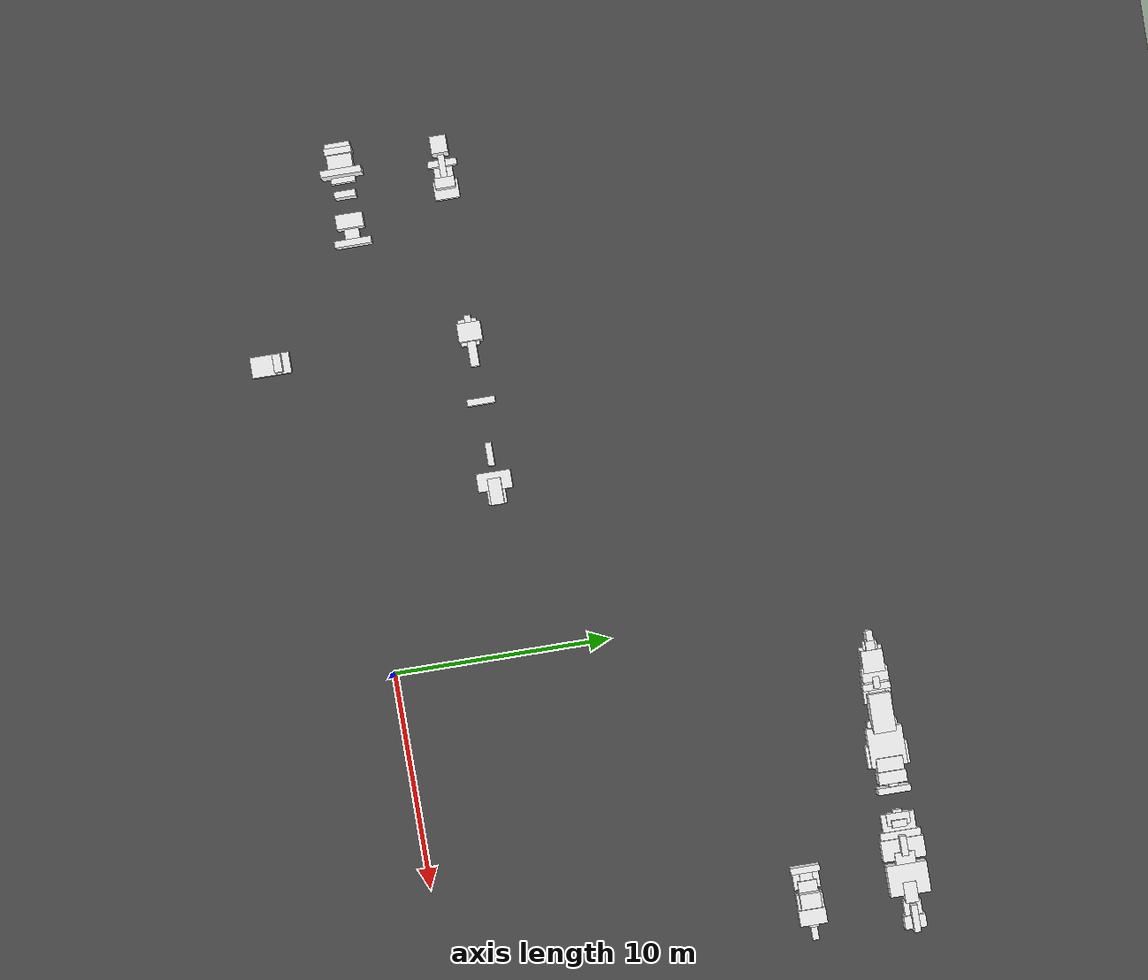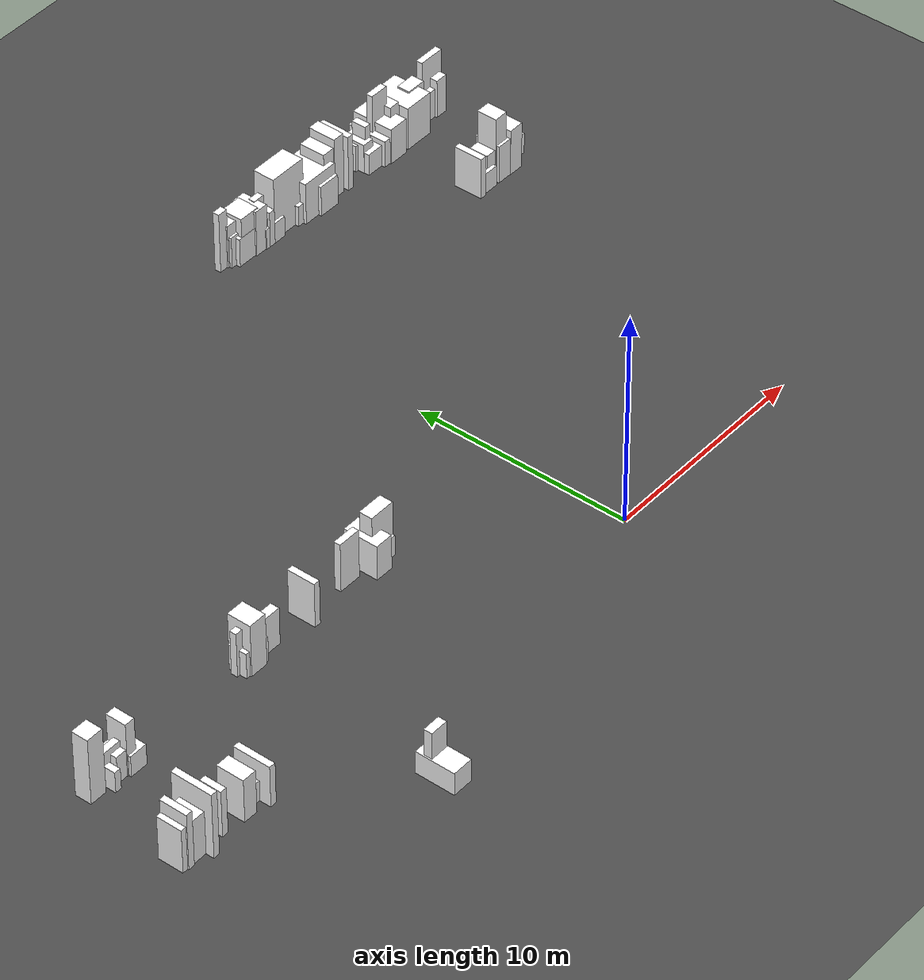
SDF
<sdf version="1.6">
 <world name="mirror_edge_world">
  <model name="ground_plane">
   <static>true</static>
   <link name="link">
    <collision name="collision">
     <geometry><plane><normal>0 0 1</normal><size>100 100</size></plane></geometry>
    </collision>
    <visual name="visual">
     <geometry><plane><normal>0 0 1</normal><size>100 100</size></plane></geometry>
     <material>
      <ambient>0.3 0.3 0.3 1</ambient>
      <diffuse>0.3 0.3 0.3 1</diffuse>
      <specular>0.5 0.5 0.5 1</specular>
      <emissive>0 0 0 1</emissive>
     </material>
    </visual>
   </link>
  </model>
  <model name="roadside_block_6_46_0">
   <static>true</static>
   <link name="link">
    <pose>-14.93615656534098 6.266449563783681 1.0100591892157889 0 0 0</pose>
    <collision name="collision">
     <geometry><box><size>0.31554994346074183 0.3 2.0201183784315777</size></box></geometry>
    </collision>
    <visual name="visual">
     <geometry><box><size>0.31554994346074183 0.3 2.0201183784315777</size></box></geometry>
     <material>
      <ambient>1 1 1 1</ambient>
      <diffuse>1 1 1 1</diffuse>
      <specular>0.9 0.9 0.9 1</specular>
      <emissive>0.05 0.05 0.05 1</emissive>
     </material>
    </visual>
   </link>
  </model>
  <model name="roadside_block_6_47_0">
   <static>true</static>
   <link name="link">
    <pose>-14.93615656534098 5.89767672821376 0.6121225274462325 0 0 0</pose>
    <collision name="collision">
     <geometry><box><size>1.2217612364891097 0.8529486010346122 1.224245054892465</size></box></geometry>
    </collision>
    <visual name="visual">
     <geometry><box><size>1.2217612364891097 0.8529486010346122 1.224245054892465</size></box></geometry>
     <material>
      <ambient>1 1 1 1</ambient>
      <diffuse>1 1 1 1</diffuse>
      <specular>0.9 0.9 0.9 1</specular>
      <emissive>0.05 0.05 0.05 1</emissive>
     </material>
    </visual>
   </link>
  </model>
  <model name="roadside_block_6_71_0">
   <static>true</static>
   <link name="link">
    <pose>-14.93615656534098 -2.9528713254643186 1.179741254271644 0 0 0</pose>
    <collision name="collision">
     <geometry><box><size>0.8335240802613174 0.3787711720536775 2.359482508543288</size></box></geometry>
    </collision>
    <visual name="visual">
     <geometry><box><size>0.8335240802613174 0.3787711720536775 2.359482508543288</size></box></geometry>
     <material>
      <ambient>1 1 1 1</ambient>
      <diffuse>1 1 1 1</diffuse>
      <specular>0.9 0.9 0.9 1</specular>
      <emissive>0.05 0.05 0.05 1</emissive>
     </material>
    </visual>
   </link>
  </model>
  <model name="roadside_block_6_72_0">
   <static>true</static>
   <link name="link">
    <pose>-14.93615656534098 -3.3216441610342393 0.5419287668428681 0 0 0</pose>
    <collision name="collision">
     <geometry><box><size>0.9598941086352828 1.81155084738607 1.0838575336857361</size></box></geometry>
    </collision>
    <visual name="visual">
     <geometry><box><size>0.9598941086352828 1.81155084738607 1.0838575336857361</size></box></geometry>
     <material>
      <ambient>1 1 1 1</ambient>
      <diffuse>1 1 1 1</diffuse>
      <specular>0.9 0.9 0.9 1</specular>
      <emissive>0.05 0.05 0.05 1</emissive>
     </material>
    </visual>
   </link>
  </model>
  <model name="roadside_block_7_0_0">
   <static>true</static>
   <link name="link">
    <pose>-24.046 1.3519780923328248 1.3582740129514355 0 0 0</pose>
    <collision name="collision">
     <geometry><box><size>0.3 1.2595613373748178 2.716548025902871</size></box></geometry>
    </collision>
    <visual name="visual">
     <geometry><box><size>0.3 1.2595613373748178 2.716548025902871</size></box></geometry>
     <material>
      <ambient>1 1 1 1</ambient>
      <diffuse>1 1 1 1</diffuse>
      <specular>0.9 0.9 0.9 1</specular>
      <emissive>0.05 0.05 0.05 1</emissive>
     </material>
    </visual>
   </link>
  </model>
  <model name="roadside_block_7_1_0">
   <static>true</static>
   <link name="link">
    <pose>-23.799454336963624 1.3519780923328248 1.0560110684610167 0 0 0</pose>
    <collision name="collision">
     <geometry><box><size>1.2916657985876765 1.155817656670508 2.1120221369220333</size></box></geometry>
    </collision>
    <visual name="visual">
     <geometry><box><size>1.2916657985876765 1.155817656670508 2.1120221369220333</size></box></geometry>
     <material>
      <ambient>1 1 1 1</ambient>
      <diffuse>1 1 1 1</diffuse>
      <specular>0.9 0.9 0.9 1</specular>
      <emissive>0.05 0.05 0.05 1</emissive>
     </material>
    </visual>
   </link>
  </model>
  <model name="roadside_block_7_2_0">
   <static>true</static>
   <link name="link">
    <pose>-23.552908673927245 5.9519780923328245 1.5887316539882477 0 0 0</pose>
    <collision name="collision">
     <geometry><box><size>0.7944411288685921 0.7592227984116298 3.1774633079764953</size></box></geometry>
    </collision>
    <visual name="visual">
     <geometry><box><size>0.7944411288685921 0.7592227984116298 3.1774633079764953</size></box></geometry>
     <material>
      <ambient>1 1 1 1</ambient>
      <diffuse>1 1 1 1</diffuse>
      <specular>0.9 0.9 0.9 1</specular>
      <emissive>0.05 0.05 0.05 1</emissive>
     </material>
    </visual>
   </link>
  </model>
  <model name="roadside_block_7_3_0">
   <static>true</static>
   <link name="link">
    <pose>-23.30636301089087 1.3519780923328248 0.5324072673740756 0 0 0</pose>
    <collision name="collision">
     <geometry><box><size>1.3104954003255975 1.111551612531347 1.0648145347481512</size></box></geometry>
    </collision>
    <visual name="visual">
     <geometry><box><size>1.3104954003255975 1.111551612531347 1.0648145347481512</size></box></geometry>
     <material>
      <ambient>1 1 1 1</ambient>
      <diffuse>1 1 1 1</diffuse>
      <specular>0.9 0.9 0.9 1</specular>
      <emissive>0.05 0.05 0.05 1</emissive>
     </material>
    </visual>
   </link>
  </model>
  <model name="roadside_block_7_4_0">
   <static>true</static>
   <link name="link">
    <pose>-23.05981734785449 1.3519780923328248 1.5694196138666845 0 0 0</pose>
    <collision name="collision">
     <geometry><box><size>0.3 1.8902110944549166 3.138839227733369</size></box></geometry>
    </collision>
    <visual name="visual">
     <geometry><box><size>0.3 1.8902110944549166 3.138839227733369</size></box></geometry>
     <material>
      <ambient>1 1 1 1</ambient>
      <diffuse>1 1 1 1</diffuse>
      <specular>0.9 0.9 0.9 1</specular>
      <emissive>0.05 0.05 0.05 1</emissive>
     </material>
    </visual>
   </link>
  </model>
  <model name="roadside_block_7_5_0">
   <static>true</static>
   <link name="link">
    <pose>-22.813271684818115 5.9519780923328245 0.5 0 0 0</pose>
    <collision name="collision">
     <geometry><box><size>0.3 1.3481017867229659 1.0</size></box></geometry>
    </collision>
    <visual name="visual">
     <geometry><box><size>0.3 1.3481017867229659 1.0</size></box></geometry>
     <material>
      <ambient>1 1 1 1</ambient>
      <diffuse>1 1 1 1</diffuse>
      <specular>0.9 0.9 0.9 1</specular>
      <emissive>0.05 0.05 0.05 1</emissive>
     </material>
    </visual>
   </link>
  </model>
  <model name="roadside_block_7_6_0">
   <static>true</static>
   <link name="link">
    <pose>-22.566726021781736 5.9519780923328245 0.8018681513796888 0 0 0</pose>
    <collision name="collision">
     <geometry><box><size>1.1880335720654698 0.3 1.6037363027593776</size></box></geometry>
    </collision>
    <visual name="visual">
     <geometry><box><size>1.1880335720654698 0.3 1.6037363027593776</size></box></geometry>
     <material>
      <ambient>1 1 1 1</ambient>
      <diffuse>1 1 1 1</diffuse>
      <specular>0.9 0.9 0.9 1</specular>
      <emissive>0.05 0.05 0.05 1</emissive>
     </material>
    </visual>
   </link>
  </model>
  <model name="roadside_block_7_7_0">
   <static>true</static>
   <link name="link">
    <pose>-22.32018035874536 5.9519780923328245 0.6579870385556903 0 0 0</pose>
    <collision name="collision">
     <geometry><box><size>0.5332218851711845 0.8588083129895712 1.3159740771113806</size></box></geometry>
    </collision>
    <visual name="visual">
     <geometry><box><size>0.5332218851711845 0.8588083129895712 1.3159740771113806</size></box></geometry>
     <material>
      <ambient>1 1 1 1</ambient>
      <diffuse>1 1 1 1</diffuse>
      <specular>0.9 0.9 0.9 1</specular>
      <emissive>0.05 0.05 0.05 1</emissive>
     </material>
    </visual>
   </link>
  </model>
  <model name="roadside_block_7_8_0">
   <static>true</static>
   <link name="link">
    <pose>-22.073634695708982 1.3519780923328248 1.1203859492186639 0 0 0</pose>
    <collision name="collision">
     <geometry><box><size>0.3 0.983570430619145 2.2407718984373277</size></box></geometry>
    </collision>
    <visual name="visual">
     <geometry><box><size>0.3 0.983570430619145 2.2407718984373277</size></box></geometry>
     <material>
      <ambient>1 1 1 1</ambient>
      <diffuse>1 1 1 1</diffuse>
      <specular>0.9 0.9 0.9 1</specular>
      <emissive>0.05 0.05 0.05 1</emissive>
     </material>
    </visual>
   </link>
  </model>
  <model name="roadside_block_7_9_0">
   <static>true</static>
   <link name="link">
    <pose>-21.827089032672607 5.9519780923328245 1.282801464331791 0 0 0</pose>
    <collision name="collision">
     <geometry><box><size>0.4765580835857851 0.9224353954900508 2.565602928663582</size></box></geometry>
    </collision>
    <visual name="visual">
     <geometry><box><size>0.4765580835857851 0.9224353954900508 2.565602928663582</size></box></geometry>
     <material>
      <ambient>1 1 1 1</ambient>
      <diffuse>1 1 1 1</diffuse>
      <specular>0.9 0.9 0.9 1</specular>
      <emissive>0.05 0.05 0.05 1</emissive>
     </material>
    </visual>
   </link>
  </model>
  <model name="roadside_block_7_10_0">
   <static>true</static>
   <link name="link">
    <pose>-21.580543369636228 5.9519780923328245 0.5 0 0 0</pose>
    <collision name="collision">
     <geometry><box><size>0.845879549343544 1.143358824650945 1.0</size></box></geometry>
    </collision>
    <visual name="visual">
     <geometry><box><size>0.845879549343544 1.143358824650945 1.0</size></box></geometry>
     <material>
      <ambient>1 1 1 1</ambient>
      <diffuse>1 1 1 1</diffuse>
      <specular>0.9 0.9 0.9 1</specular>
      <emissive>0.05 0.05 0.05 1</emissive>
     </material>
    </visual>
   </link>
  </model>
  <model name="roadside_block_7_13_0">
   <static>true</static>
   <link name="link">
    <pose>-20.840906380527098 1.3519780923328248 1.0396856816623183 0 0 0</pose>
    <collision name="collision">
     <geometry><box><size>0.663122516567571 1.25349890532949 2.0793713633246367</size></box></geometry>
    </collision>
    <visual name="visual">
     <geometry><box><size>0.663122516567571 1.25349890532949 2.0793713633246367</size></box></geometry>
     <material>
      <ambient>1 1 1 1</ambient>
      <diffuse>1 1 1 1</diffuse>
      <specular>0.9 0.9 0.9 1</specular>
      <emissive>0.05 0.05 0.05 1</emissive>
     </material>
    </visual>
   </link>
  </model>
  <model name="roadside_block_7_15_0">
   <static>true</static>
   <link name="link">
    <pose>-20.347815054454344 1.3519780923328248 0.5 0 0 0</pose>
    <collision name="collision">
     <geometry><box><size>0.853784522570253 0.6746068936726302 1.0</size></box></geometry>
    </collision>
    <visual name="visual">
     <geometry><box><size>0.853784522570253 0.6746068936726302 1.0</size></box></geometry>
     <material>
      <ambient>1 1 1 1</ambient>
      <diffuse>1 1 1 1</diffuse>
      <specular>0.9 0.9 0.9 1</specular>
      <emissive>0.05 0.05 0.05 1</emissive>
     </material>
    </visual>
   </link>
  </model>
  <model name="roadside_block_7_17_0">
   <static>true</static>
   <link name="link">
    <pose>-19.85472372838159 1.3519780923328248 0.9928755418449663 0 0 0</pose>
    <collision name="collision">
     <geometry><box><size>0.3 1.69654757842538 1.9857510836899326</size></box></geometry>
    </collision>
    <visual name="visual">
     <geometry><box><size>0.3 1.69654757842538 1.9857510836899326</size></box></geometry>
     <material>
      <ambient>1 1 1 1</ambient>
      <diffuse>1 1 1 1</diffuse>
      <specular>0.9 0.9 0.9 1</specular>
      <emissive>0.05 0.05 0.05 1</emissive>
     </material>
    </visual>
   </link>
  </model>
  <model name="roadside_block_7_35_0">
   <static>true</static>
   <link name="link">
    <pose>-15.416901793726803 5.9519780923328245 1.0688234254331048 0 0 0</pose>
    <collision name="collision">
     <geometry><box><size>0.5539774787841407 0.3 2.1376468508662096</size></box></geometry>
    </collision>
    <visual name="visual">
     <geometry><box><size>0.5539774787841407 0.3 2.1376468508662096</size></box></geometry>
     <material>
      <ambient>1 1 1 1</ambient>
      <diffuse>1 1 1 1</diffuse>
      <specular>0.9 0.9 0.9 1</specular>
      <emissive>0.05 0.05 0.05 1</emissive>
     </material>
    </visual>
   </link>
  </model>
  <model name="roadside_block_7_37_0">
   <static>true</static>
   <link name="link">
    <pose>-14.923810467654048 5.9519780923328245 1.2650366720433748 0 0 0</pose>
    <collision name="collision">
     <geometry><box><size>0.8551439535448286 1.0911517065648086 2.5300733440867496</size></box></geometry>
    </collision>
    <visual name="visual">
     <geometry><box><size>0.8551439535448286 1.0911517065648086 2.5300733440867496</size></box></geometry>
     <material>
      <ambient>1 1 1 1</ambient>
      <diffuse>1 1 1 1</diffuse>
      <specular>0.9 0.9 0.9 1</specular>
      <emissive>0.05 0.05 0.05 1</emissive>
     </material>
    </visual>
   </link>
  </model>
  <model name="roadside_block_7_41_0">
   <static>true</static>
   <link name="link">
    <pose>-13.937627815508542 5.9519780923328245 0.8967241940560736 0 0 0</pose>
    <collision name="collision">
     <geometry><box><size>1.1880258806974842 0.40316497235744453 1.7934483881121472</size></box></geometry>
    </collision>
    <visual name="visual">
     <geometry><box><size>1.1880258806974842 0.40316497235744453 1.7934483881121472</size></box></geometry>
     <material>
      <ambient>1 1 1 1</ambient>
      <diffuse>1 1 1 1</diffuse>
      <specular>0.9 0.9 0.9 1</specular>
      <emissive>0.05 0.05 0.05 1</emissive>
     </material>
    </visual>
   </link>
  </model>
  <model name="roadside_block_7_50_0">
   <static>true</static>
   <link name="link">
    <pose>-11.718716848181147 5.9519780923328245 1.0774131021778646 0 0 0</pose>
    <collision name="collision">
     <geometry><box><size>0.3 1.2937941722157142 2.154826204355729</size></box></geometry>
    </collision>
    <visual name="visual">
     <geometry><box><size>0.3 1.2937941722157142 2.154826204355729</size></box></geometry>
     <material>
      <ambient>1 1 1 1</ambient>
      <diffuse>1 1 1 1</diffuse>
      <specular>0.9 0.9 0.9 1</specular>
      <emissive>0.05 0.05 0.05 1</emissive>
     </material>
    </visual>
   </link>
  </model>
  <model name="roadside_block_7_60_0">
   <static>true</static>
   <link name="link">
    <pose>-9.253260217817376 5.9519780923328245 1.1733793537188435 0 0 0</pose>
    <collision name="collision">
     <geometry><box><size>1.0714756004347432 0.3 2.346758707437687</size></box></geometry>
    </collision>
    <visual name="visual">
     <geometry><box><size>1.0714756004347432 0.3 2.346758707437687</size></box></geometry>
     <material>
      <ambient>1 1 1 1</ambient>
      <diffuse>1 1 1 1</diffuse>
      <specular>0.9 0.9 0.9 1</specular>
      <emissive>0.05 0.05 0.05 1</emissive>
     </material>
    </visual>
   </link>
  </model>
  <model name="roadside_block_7_65_0">
   <static>true</static>
   <link name="link">
    <pose>-8.020531902635494 5.9519780923328245 0.8396117766682285 0 0 0</pose>
    <collision name="collision">
     <geometry><box><size>0.8496908215253538 1.5955948391888208 1.679223553336457</size></box></geometry>
    </collision>
    <visual name="visual">
     <geometry><box><size>0.8496908215253538 1.5955948391888208 1.679223553336457</size></box></geometry>
     <material>
      <ambient>1 1 1 1</ambient>
      <diffuse>1 1 1 1</diffuse>
      <specular>0.9 0.9 0.9 1</specular>
      <emissive>0.05 0.05 0.05 1</emissive>
     </material>
    </visual>
   </link>
  </model>
  <model name="roadside_block_7_67_0">
   <static>true</static>
   <link name="link">
    <pose>-7.527440576562739 5.9519780923328245 1.2974312101036731 0 0 0</pose>
    <collision name="collision">
     <geometry><box><size>1.213583130278145 0.6068844123307201 2.5948624202073463</size></box></geometry>
    </collision>
    <visual name="visual">
     <geometry><box><size>1.213583130278145 0.6068844123307201 2.5948624202073463</size></box></geometry>
     <material>
      <ambient>1 1 1 1</ambient>
      <diffuse>1 1 1 1</diffuse>
      <specular>0.9 0.9 0.9 1</specular>
      <emissive>0.05 0.05 0.05 1</emissive>
     </material>
    </visual>
   </link>
  </model>
  <model name="roadside_block_7_68_0">
   <static>true</static>
   <link name="link">
    <pose>-7.28089491352636 5.9519780923328245 0.5 0 0 0</pose>
    <collision name="collision">
     <geometry><box><size>0.6493696525376635 0.855136826426582 1.0</size></box></geometry>
    </collision>
    <visual name="visual">
     <geometry><box><size>0.6493696525376635 0.855136826426582 1.0</size></box></geometry>
     <material>
      <ambient>1 1 1 1</ambient>
      <diffuse>1 1 1 1</diffuse>
      <specular>0.9 0.9 0.9 1</specular>
      <emissive>0.05 0.05 0.05 1</emissive>
     </material>
    </visual>
   </link>
  </model>
  <model name="roadside_block_8_0_0">
   <static>true</static>
   <link name="link">
    <pose>15.024 21.691395130526782 0.9381469384026138 0 0 0</pose>
    <collision name="collision">
     <geometry><box><size>0.606527638773557 1.0150133456486208 1.8762938768052275</size></box></geometry>
    </collision>
    <visual name="visual">
     <geometry><box><size>0.606527638773557 1.0150133456486208 1.8762938768052275</size></box></geometry>
     <material>
      <ambient>1 1 1 1</ambient>
      <diffuse>1 1 1 1</diffuse>
      <specular>0.9 0.9 0.9 1</specular>
      <emissive>0.05 0.05 0.05 1</emissive>
     </material>
    </visual>
   </link>
  </model>
  <model name="roadside_block_8_1_0">
   <static>true</static>
   <link name="link">
    <pose>14.825786766678139 21.691395130526782 1.4695931964399565 0 0 0</pose>
    <collision name="collision">
     <geometry><box><size>1.2486280473350717 0.3 2.939186392879913</size></box></geometry>
    </collision>
    <visual name="visual">
     <geometry><box><size>1.2486280473350717 0.3 2.939186392879913</size></box></geometry>
     <material>
      <ambient>1 1 1 1</ambient>
      <diffuse>1 1 1 1</diffuse>
      <specular>0.9 0.9 0.9 1</specular>
      <emissive>0.05 0.05 0.05 1</emissive>
     </material>
    </visual>
   </link>
  </model>
  <model name="roadside_block_8_2_0">
   <static>true</static>
   <link name="link">
    <pose>14.62757353335628 21.691395130526782 0.7143218886234327 0 0 0</pose>
    <collision name="collision">
     <geometry><box><size>1.226834753005959 0.8164456231887378 1.4286437772468654</size></box></geometry>
    </collision>
    <visual name="visual">
     <geometry><box><size>1.226834753005959 0.8164456231887378 1.4286437772468654</size></box></geometry>
     <material>
      <ambient>1 1 1 1</ambient>
      <diffuse>1 1 1 1</diffuse>
      <specular>0.9 0.9 0.9 1</specular>
      <emissive>0.05 0.05 0.05 1</emissive>
     </material>
    </visual>
   </link>
  </model>
  <model name="roadside_block_8_3_0">
   <static>true</static>
   <link name="link">
    <pose>14.42936030003442 17.09139513052678 0.5 0 0 0</pose>
    <collision name="collision">
     <geometry><box><size>1.4764183606212407 0.3 1.0</size></box></geometry>
    </collision>
    <visual name="visual">
     <geometry><box><size>1.4764183606212407 0.3 1.0</size></box></geometry>
     <material>
      <ambient>1 1 1 1</ambient>
      <diffuse>1 1 1 1</diffuse>
      <specular>0.9 0.9 0.9 1</specular>
      <emissive>0.05 0.05 0.05 1</emissive>
     </material>
    </visual>
   </link>
  </model>
  <model name="roadside_block_8_4_0">
   <static>true</static>
   <link name="link">
    <pose>14.231147066712559 17.09139513052678 0.8841291784967578 0 0 0</pose>
    <collision name="collision">
     <geometry><box><size>0.5730511402466553 0.4792388850601673 1.7682583569935155</size></box></geometry>
    </collision>
    <visual name="visual">
     <geometry><box><size>0.5730511402466553 0.4792388850601673 1.7682583569935155</size></box></geometry>
     <material>
      <ambient>1 1 1 1</ambient>
      <diffuse>1 1 1 1</diffuse>
      <specular>0.9 0.9 0.9 1</specular>
      <emissive>0.05 0.05 0.05 1</emissive>
     </material>
    </visual>
   </link>
  </model>
  <model name="roadside_block_8_5_0">
   <static>true</static>
   <link name="link">
    <pose>14.0329338333907 17.09139513052678 1.1228553035085174 0 0 0</pose>
    <collision name="collision">
     <geometry><box><size>0.7252830767290872 1.260806640950378 2.2457106070170347</size></box></geometry>
    </collision>
    <visual name="visual">
     <geometry><box><size>0.7252830767290872 1.260806640950378 2.2457106070170347</size></box></geometry>
     <material>
      <ambient>1 1 1 1</ambient>
      <diffuse>1 1 1 1</diffuse>
      <specular>0.9 0.9 0.9 1</specular>
      <emissive>0.05 0.05 0.05 1</emissive>
     </material>
    </visual>
   </link>
  </model>
  <model name="roadside_block_8_6_0">
   <static>true</static>
   <link name="link">
    <pose>13.83472060006884 17.09139513052678 0.9785134974269557 0 0 0</pose>
    <collision name="collision">
     <geometry><box><size>1.1429024769131293 0.6661934283982185 1.9570269948539114</size></box></geometry>
    </collision>
    <visual name="visual">
     <geometry><box><size>1.1429024769131293 0.6661934283982185 1.9570269948539114</size></box></geometry>
     <material>
      <ambient>1 1 1 1</ambient>
      <diffuse>1 1 1 1</diffuse>
      <specular>0.9 0.9 0.9 1</specular>
      <emissive>0.05 0.05 0.05 1</emissive>
     </material>
    </visual>
   </link>
  </model>
  <model name="roadside_block_8_7_0">
   <static>true</static>
   <link name="link">
    <pose>13.63650736674698 21.691395130526782 1.0798676938374923 0 0 0</pose>
    <collision name="collision">
     <geometry><box><size>0.9522573658347754 0.612081578637983 2.1597353876749845</size></box></geometry>
    </collision>
    <visual name="visual">
     <geometry><box><size>0.9522573658347754 0.612081578637983 2.1597353876749845</size></box></geometry>
     <material>
      <ambient>1 1 1 1</ambient>
      <diffuse>1 1 1 1</diffuse>
      <specular>0.9 0.9 0.9 1</specular>
      <emissive>0.05 0.05 0.05 1</emissive>
     </material>
    </visual>
   </link>
  </model>
  <model name="roadside_block_8_8_0">
   <static>true</static>
   <link name="link">
    <pose>13.43829413342512 17.09139513052678 0.9263313460280334 0 0 0</pose>
    <collision name="collision">
     <geometry><box><size>0.9475540110926074 1.214405738300431 1.8526626920560667</size></box></geometry>
    </collision>
    <visual name="visual">
     <geometry><box><size>0.9475540110926074 1.214405738300431 1.8526626920560667</size></box></geometry>
     <material>
      <ambient>1 1 1 1</ambient>
      <diffuse>1 1 1 1</diffuse>
      <specular>0.9 0.9 0.9 1</specular>
      <emissive>0.05 0.05 0.05 1</emissive>
     </material>
    </visual>
   </link>
  </model>
  <model name="roadside_block_8_9_0">
   <static>true</static>
   <link name="link">
    <pose>13.24008090010326 17.09139513052678 1.6086539976446794 0 0 0</pose>
    <collision name="collision">
     <geometry><box><size>0.6962438526489948 0.9499002080059896 3.217307995289359</size></box></geometry>
    </collision>
    <visual name="visual">
     <geometry><box><size>0.6962438526489948 0.9499002080059896 3.217307995289359</size></box></geometry>
     <material>
      <ambient>1 1 1 1</ambient>
      <diffuse>1 1 1 1</diffuse>
      <specular>0.9 0.9 0.9 1</specular>
      <emissive>0.05 0.05 0.05 1</emissive>
     </material>
    </visual>
   </link>
  </model>
  <model name="roadside_block_8_10_0">
   <static>true</static>
   <link name="link">
    <pose>13.041867666781402 21.691395130526782 1.047572747979912 0 0 0</pose>
    <collision name="collision">
     <geometry><box><size>1.43455130158587 1.8739003931495093 2.095145495959824</size></box></geometry>
    </collision>
    <visual name="visual">
     <geometry><box><size>1.43455130158587 1.8739003931495093 2.095145495959824</size></box></geometry>
     <material>
      <ambient>1 1 1 1</ambient>
      <diffuse>1 1 1 1</diffuse>
      <specular>0.9 0.9 0.9 1</specular>
      <emissive>0.05 0.05 0.05 1</emissive>
     </material>
    </visual>
   </link>
  </model>
  <model name="roadside_block_8_11_0">
   <static>true</static>
   <link name="link">
    <pose>12.843654433459541 17.09139513052678 0.8252364596583176 0 0 0</pose>
    <collision name="collision">
     <geometry><box><size>0.9278182445939671 0.8851422402864647 1.6504729193166352</size></box></geometry>
    </collision>
    <visual name="visual">
     <geometry><box><size>0.9278182445939671 0.8851422402864647 1.6504729193166352</size></box></geometry>
     <material>
      <ambient>1 1 1 1</ambient>
      <diffuse>1 1 1 1</diffuse>
      <specular>0.9 0.9 0.9 1</specular>
      <emissive>0.05 0.05 0.05 1</emissive>
     </material>
    </visual>
   </link>
  </model>
  <model name="roadside_block_8_12_0">
   <static>true</static>
   <link name="link">
    <pose>12.645441200137682 17.09139513052678 0.5313757040835281 0 0 0</pose>
    <collision name="collision">
     <geometry><box><size>1.5034020381250772 0.37915959354277307 1.0627514081670562</size></box></geometry>
    </collision>
    <visual name="visual">
     <geometry><box><size>1.5034020381250772 0.37915959354277307 1.0627514081670562</size></box></geometry>
     <material>
      <ambient>1 1 1 1</ambient>
      <diffuse>1 1 1 1</diffuse>
      <specular>0.9 0.9 0.9 1</specular>
      <emissive>0.05 0.05 0.05 1</emissive>
     </material>
    </visual>
   </link>
  </model>
  <model name="roadside_block_8_13_0">
   <static>true</static>
   <link name="link">
    <pose>12.447227966815822 17.09139513052678 0.6812714522027601 0 0 0</pose>
    <collision name="collision">
     <geometry><box><size>0.9383916540079001 0.5932919857218539 1.3625429044055202</size></box></geometry>
    </collision>
    <visual name="visual">
     <geometry><box><size>0.9383916540079001 0.5932919857218539 1.3625429044055202</size></box></geometry>
     <material>
      <ambient>1 1 1 1</ambient>
      <diffuse>1 1 1 1</diffuse>
      <specular>0.9 0.9 0.9 1</specular>
      <emissive>0.05 0.05 0.05 1</emissive>
     </material>
    </visual>
   </link>
  </model>
  <model name="roadside_block_8_14_0">
   <static>true</static>
   <link name="link">
    <pose>12.249014733493961 17.09139513052678 0.5 0 0 0</pose>
    <collision name="collision">
     <geometry><box><size>1.0629456106116877 1.221450956870606 1.0</size></box></geometry>
    </collision>
    <visual name="visual">
     <geometry><box><size>1.0629456106116877 1.221450956870606 1.0</size></box></geometry>
     <material>
      <ambient>1 1 1 1</ambient>
      <diffuse>1 1 1 1</diffuse>
      <specular>0.9 0.9 0.9 1</specular>
      <emissive>0.05 0.05 0.05 1</emissive>
     </material>
    </visual>
   </link>
  </model>
  <model name="roadside_block_8_15_0">
   <static>true</static>
   <link name="link">
    <pose>12.050801500172101 21.691395130526782 1.1171999820926184 0 0 0</pose>
    <collision name="collision">
     <geometry><box><size>0.5423872426274574 0.9213911317575193 2.234399964185237</size></box></geometry>
    </collision>
    <visual name="visual">
     <geometry><box><size>0.5423872426274574 0.9213911317575193 2.234399964185237</size></box></geometry>
     <material>
      <ambient>1 1 1 1</ambient>
      <diffuse>1 1 1 1</diffuse>
      <specular>0.9 0.9 0.9 1</specular>
      <emissive>0.05 0.05 0.05 1</emissive>
     </material>
    </visual>
   </link>
  </model>
  <model name="roadside_block_8_16_0">
   <static>true</static>
   <link name="link">
    <pose>11.852588266850242 17.09139513052678 1.0029518034934708 0 0 0</pose>
    <collision name="collision">
     <geometry><box><size>0.3 1.3628967492724406 2.0059036069869416</size></box></geometry>
    </collision>
    <visual name="visual">
     <geometry><box><size>0.3 1.3628967492724406 2.0059036069869416</size></box></geometry>
     <material>
      <ambient>1 1 1 1</ambient>
      <diffuse>1 1 1 1</diffuse>
      <specular>0.9 0.9 0.9 1</specular>
      <emissive>0.05 0.05 0.05 1</emissive>
     </material>
    </visual>
   </link>
  </model>
  <model name="roadside_block_8_17_0">
   <static>true</static>
   <link name="link">
    <pose>11.654375033528382 21.691395130526782 0.8725225097434737 0 0 0</pose>
    <collision name="collision">
     <geometry><box><size>0.9739489178171346 2.0 1.7450450194869473</size></box></geometry>
    </collision>
    <visual name="visual">
     <geometry><box><size>0.9739489178171346 2.0 1.7450450194869473</size></box></geometry>
     <material>
      <ambient>1 1 1 1</ambient>
      <diffuse>1 1 1 1</diffuse>
      <specular>0.9 0.9 0.9 1</specular>
      <emissive>0.05 0.05 0.05 1</emissive>
     </material>
    </visual>
   </link>
  </model>
  <model name="roadside_block_8_18_0">
   <static>true</static>
   <link name="link">
    <pose>11.456161800206523 21.691395130526782 1.5672400025196014 0 0 0</pose>
    <collision name="collision">
     <geometry><box><size>0.8967606136217556 0.3 3.1344800050392028</size></box></geometry>
    </collision>
    <visual name="visual">
     <geometry><box><size>0.8967606136217556 0.3 3.1344800050392028</size></box></geometry>
     <material>
      <ambient>1 1 1 1</ambient>
      <diffuse>1 1 1 1</diffuse>
      <specular>0.9 0.9 0.9 1</specular>
      <emissive>0.05 0.05 0.05 1</emissive>
     </material>
    </visual>
   </link>
  </model>
  <model name="roadside_block_8_19_0">
   <static>true</static>
   <link name="link">
    <pose>11.257948566884663 21.691395130526782 0.6485980673693554 0 0 0</pose>
    <collision name="collision">
     <geometry><box><size>0.8584595524455371 1.8859350808616815 1.2971961347387109</size></box></geometry>
    </collision>
    <visual name="visual">
     <geometry><box><size>0.8584595524455371 1.8859350808616815 1.2971961347387109</size></box></geometry>
     <material>
      <ambient>1 1 1 1</ambient>
      <diffuse>1 1 1 1</diffuse>
      <specular>0.9 0.9 0.9 1</specular>
      <emissive>0.05 0.05 0.05 1</emissive>
     </material>
    </visual>
   </link>
  </model>
  <model name="roadside_block_8_21_0">
   <static>true</static>
   <link name="link">
    <pose>10.861522100240943 21.691395130526782 0.5250912323874399 0 0 0</pose>
    <collision name="collision">
     <geometry><box><size>1.705034177027355 1.5538560548045415 1.0501824647748799</size></box></geometry>
    </collision>
    <visual name="visual">
     <geometry><box><size>1.705034177027355 1.5538560548045415 1.0501824647748799</size></box></geometry>
     <material>
      <ambient>1 1 1 1</ambient>
      <diffuse>1 1 1 1</diffuse>
      <specular>0.9 0.9 0.9 1</specular>
      <emissive>0.05 0.05 0.05 1</emissive>
     </material>
    </visual>
   </link>
  </model>
  <model name="roadside_block_8_23_0">
   <static>true</static>
   <link name="link">
    <pose>10.465095633597223 21.691395130526782 1.0380337113456946 0 0 0</pose>
    <collision name="collision">
     <geometry><box><size>0.3194069967646821 0.6957516324506672 2.076067422691389</size></box></geometry>
    </collision>
    <visual name="visual">
     <geometry><box><size>0.3194069967646821 0.6957516324506672 2.076067422691389</size></box></geometry>
     <material>
      <ambient>1 1 1 1</ambient>
      <diffuse>1 1 1 1</diffuse>
      <specular>0.9 0.9 0.9 1</specular>
      <emissive>0.05 0.05 0.05 1</emissive>
     </material>
    </visual>
   </link>
  </model>
  <model name="roadside_block_8_24_0">
   <static>true</static>
   <link name="link">
    <pose>10.266882400275364 21.691395130526782 0.7155465822072793 0 0 0</pose>
    <collision name="collision">
     <geometry><box><size>0.5626679338928694 1.0701988994377827 1.4310931644145586</size></box></geometry>
    </collision>
    <visual name="visual">
     <geometry><box><size>0.5626679338928694 1.0701988994377827 1.4310931644145586</size></box></geometry>
     <material>
      <ambient>1 1 1 1</ambient>
      <diffuse>1 1 1 1</diffuse>
      <specular>0.9 0.9 0.9 1</specular>
      <emissive>0.05 0.05 0.05 1</emissive>
     </material>
    </visual>
   </link>
  </model>
  <model name="roadside_block_8_25_0">
   <static>true</static>
   <link name="link">
    <pose>10.068669166953503 21.691395130526782 0.650282260611593 0 0 0</pose>
    <collision name="collision">
     <geometry><box><size>0.4371052775235519 0.426788886924072 1.300564521223186</size></box></geometry>
    </collision>
    <visual name="visual">
     <geometry><box><size>0.4371052775235519 0.426788886924072 1.300564521223186</size></box></geometry>
     <material>
      <ambient>1 1 1 1</ambient>
      <diffuse>1 1 1 1</diffuse>
      <specular>0.9 0.9 0.9 1</specular>
      <emissive>0.05 0.05 0.05 1</emissive>
     </material>
    </visual>
   </link>
  </model>
  <model name="roadside_block_8_31_0">
   <static>true</static>
   <link name="link">
    <pose>8.879389767022344 21.691395130526782 1.358879904489942 0 0 0</pose>
    <collision name="collision">
     <geometry><box><size>0.3 1.5208415524449295 2.717759808979884</size></box></geometry>
    </collision>
    <visual name="visual">
     <geometry><box><size>0.3 1.5208415524449295 2.717759808979884</size></box></geometry>
     <material>
      <ambient>1 1 1 1</ambient>
      <diffuse>1 1 1 1</diffuse>
      <specular>0.9 0.9 0.9 1</specular>
      <emissive>0.05 0.05 0.05 1</emissive>
     </material>
    </visual>
   </link>
  </model>
  <model name="roadside_block_8_32_0">
   <static>true</static>
   <link name="link">
    <pose>8.681176533700484 21.691395130526782 0.5 0 0 0</pose>
    <collision name="collision">
     <geometry><box><size>0.806757387538017 0.6148722204298265 1.0</size></box></geometry>
    </collision>
    <visual name="visual">
     <geometry><box><size>0.806757387538017 0.6148722204298265 1.0</size></box></geometry>
     <material>
      <ambient>1 1 1 1</ambient>
      <diffuse>1 1 1 1</diffuse>
      <specular>0.9 0.9 0.9 1</specular>
      <emissive>0.05 0.05 0.05 1</emissive>
     </material>
    </visual>
   </link>
  </model>
  <model name="roadside_block_8_33_0">
   <static>true</static>
   <link name="link">
    <pose>8.482963300378625 21.691395130526782 1.1756663294210017 0 0 0</pose>
    <collision name="collision">
     <geometry><box><size>0.5536210446928802 0.3944070724099509 2.3513326588420034</size></box></geometry>
    </collision>
    <visual name="visual">
     <geometry><box><size>0.5536210446928802 0.3944070724099509 2.3513326588420034</size></box></geometry>
     <material>
      <ambient>1 1 1 1</ambient>
      <diffuse>1 1 1 1</diffuse>
      <specular>0.9 0.9 0.9 1</specular>
      <emissive>0.05 0.05 0.05 1</emissive>
     </material>
    </visual>
   </link>
  </model>
  <model name="roadside_block_8_34_0">
   <static>true</static>
   <link name="link">
    <pose>8.284750067056766 21.691395130526782 1.4935079718424464 0 0 0</pose>
    <collision name="collision">
     <geometry><box><size>0.565179398592957 1.3056755885487141 2.987015943684893</size></box></geometry>
    </collision>
    <visual name="visual">
     <geometry><box><size>0.565179398592957 1.3056755885487141 2.987015943684893</size></box></geometry>
     <material>
      <ambient>1 1 1 1</ambient>
      <diffuse>1 1 1 1</diffuse>
      <specular>0.9 0.9 0.9 1</specular>
      <emissive>0.05 0.05 0.05 1</emissive>
     </material>
    </visual>
   </link>
  </model>
  <model name="roadside_block_8_36_0">
   <static>true</static>
   <link name="link">
    <pose>7.888323600413045 21.691395130526782 1.170447926912213 0 0 0</pose>
    <collision name="collision">
     <geometry><box><size>0.3 0.6921848913370734 2.340895853824426</size></box></geometry>
    </collision>
    <visual name="visual">
     <geometry><box><size>0.3 0.6921848913370734 2.340895853824426</size></box></geometry>
     <material>
      <ambient>1 1 1 1</ambient>
      <diffuse>1 1 1 1</diffuse>
      <specular>0.9 0.9 0.9 1</specular>
      <emissive>0.05 0.05 0.05 1</emissive>
     </material>
    </visual>
   </link>
  </model>
  <model name="roadside_block_8_37_0">
   <static>true</static>
   <link name="link">
    <pose>7.690110367091186 21.691395130526782 1.275882665794109 0 0 0</pose>
    <collision name="collision">
     <geometry><box><size>0.617292738097354 1.2219575886005158 2.551765331588218</size></box></geometry>
    </collision>
    <visual name="visual">
     <geometry><box><size>0.617292738097354 1.2219575886005158 2.551765331588218</size></box></geometry>
     <material>
      <ambient>1 1 1 1</ambient>
      <diffuse>1 1 1 1</diffuse>
      <specular>0.9 0.9 0.9 1</specular>
      <emissive>0.05 0.05 0.05 1</emissive>
     </material>
    </visual>
   </link>
  </model>
  <model name="roadside_block_8_38_0">
   <static>true</static>
   <link name="link">
    <pose>7.491897133769326 21.691395130526782 0.5928826864724749 0 0 0</pose>
    <collision name="collision">
     <geometry><box><size>0.9831624518150098 1.029463335148828 1.1857653729449498</size></box></geometry>
    </collision>
    <visual name="visual">
     <geometry><box><size>0.9831624518150098 1.029463335148828 1.1857653729449498</size></box></geometry>
     <material>
      <ambient>1 1 1 1</ambient>
      <diffuse>1 1 1 1</diffuse>
      <specular>0.9 0.9 0.9 1</specular>
      <emissive>0.05 0.05 0.05 1</emissive>
     </material>
    </visual>
   </link>
  </model>
  <model name="roadside_block_8_39_0">
   <static>true</static>
   <link name="link">
    <pose>7.2936839004474665 21.691395130526782 0.7411682652456965 0 0 0</pose>
    <collision name="collision">
     <geometry><box><size>1.0535357824250413 1.9442266557662682 1.482336530491393</size></box></geometry>
    </collision>
    <visual name="visual">
     <geometry><box><size>1.0535357824250413 1.9442266557662682 1.482336530491393</size></box></geometry>
     <material>
      <ambient>1 1 1 1</ambient>
      <diffuse>1 1 1 1</diffuse>
      <specular>0.9 0.9 0.9 1</specular>
      <emissive>0.05 0.05 0.05 1</emissive>
     </material>
    </visual>
   </link>
  </model>
  <model name="roadside_block_8_40_0">
   <static>true</static>
   <link name="link">
    <pose>7.095470667125607 21.691395130526782 0.512006618647189 0 0 0</pose>
    <collision name="collision">
     <geometry><box><size>1.4990491564001005 0.3 1.024013237294378</size></box></geometry>
    </collision>
    <visual name="visual">
     <geometry><box><size>1.4990491564001005 0.3 1.024013237294378</size></box></geometry>
     <material>
      <ambient>1 1 1 1</ambient>
      <diffuse>1 1 1 1</diffuse>
      <specular>0.9 0.9 0.9 1</specular>
      <emissive>0.05 0.05 0.05 1</emissive>
     </material>
    </visual>
   </link>
  </model>
  <model name="roadside_block_8_41_0">
   <static>true</static>
   <link name="link">
    <pose>6.8972574338037465 21.691395130526782 1.0111785503567499 0 0 0</pose>
    <collision name="collision">
     <geometry><box><size>1.8206091621786005 1.660169401589484 2.0223571007134997</size></box></geometry>
    </collision>
    <visual name="visual">
     <geometry><box><size>1.8206091621786005 1.660169401589484 2.0223571007134997</size></box></geometry>
     <material>
      <ambient>1 1 1 1</ambient>
      <diffuse>1 1 1 1</diffuse>
      <specular>0.9 0.9 0.9 1</specular>
      <emissive>0.05 0.05 0.05 1</emissive>
     </material>
    </visual>
   </link>
  </model>
  <model name="roadside_block_8_45_0">
   <static>true</static>
   <link name="link">
    <pose>6.104404500516308 21.691395130526782 0.5 0 0 0</pose>
    <collision name="collision">
     <geometry><box><size>0.8553678820094769 1.3846882181067588 1.0</size></box></geometry>
    </collision>
    <visual name="visual">
     <geometry><box><size>0.8553678820094769 1.3846882181067588 1.0</size></box></geometry>
     <material>
      <ambient>1 1 1 1</ambient>
      <diffuse>1 1 1 1</diffuse>
      <specular>0.9 0.9 0.9 1</specular>
      <emissive>0.05 0.05 0.05 1</emissive>
     </material>
    </visual>
   </link>
  </model>
  <model name="roadside_block_8_49_0">
   <static>true</static>
   <link name="link">
    <pose>5.311551567228868 21.691395130526782 1.5367999488893973 0 0 0</pose>
    <collision name="collision">
     <geometry><box><size>1.7993079507547034 1.0294254102252776 3.0735998977787946</size></box></geometry>
    </collision>
    <visual name="visual">
     <geometry><box><size>1.7993079507547034 1.0294254102252776 3.0735998977787946</size></box></geometry>
     <material>
      <ambient>1 1 1 1</ambient>
      <diffuse>1 1 1 1</diffuse>
      <specular>0.9 0.9 0.9 1</specular>
      <emissive>0.05 0.05 0.05 1</emissive>
     </material>
    </visual>
   </link>
  </model>
  <model name="roadside_block_8_52_0">
   <static>true</static>
   <link name="link">
    <pose>4.716911867263288 21.691395130526782 0.5 0 0 0</pose>
    <collision name="collision">
     <geometry><box><size>1.067746052281376 0.7769429479346723 1.0</size></box></geometry>
    </collision>
    <visual name="visual">
     <geometry><box><size>1.067746052281376 0.7769429479346723 1.0</size></box></geometry>
     <material>
      <ambient>1 1 1 1</ambient>
      <diffuse>1 1 1 1</diffuse>
      <specular>0.9 0.9 0.9 1</specular>
      <emissive>0.05 0.05 0.05 1</emissive>
     </material>
    </visual>
   </link>
  </model>
  <model name="roadside_block_8_54_0">
   <static>true</static>
   <link name="link">
    <pose>4.320485400619569 21.691395130526782 0.5 0 0 0</pose>
    <collision name="collision">
     <geometry><box><size>1.1382028788219256 1.2819548034390025 1.0</size></box></geometry>
    </collision>
    <visual name="visual">
     <geometry><box><size>1.1382028788219256 1.2819548034390025 1.0</size></box></geometry>
     <material>
      <ambient>1 1 1 1</ambient>
      <diffuse>1 1 1 1</diffuse>
      <specular>0.9 0.9 0.9 1</specular>
      <emissive>0.05 0.05 0.05 1</emissive>
     </material>
    </visual>
   </link>
  </model>
  <model name="roadside_block_8_55_0">
   <static>true</static>
   <link name="link">
    <pose>4.122272167297709 21.691395130526782 0.8643772724958168 0 0 0</pose>
    <collision name="collision">
     <geometry><box><size>0.3 1.2887618842183308 1.7287545449916335</size></box></geometry>
    </collision>
    <visual name="visual">
     <geometry><box><size>0.3 1.2887618842183308 1.7287545449916335</size></box></geometry>
     <material>
      <ambient>1 1 1 1</ambient>
      <diffuse>1 1 1 1</diffuse>
      <specular>0.9 0.9 0.9 1</specular>
      <emissive>0.05 0.05 0.05 1</emissive>
     </material>
    </visual>
   </link>
  </model>
  <model name="roadside_block_8_56_0">
   <static>true</static>
   <link name="link">
    <pose>3.9240589339758483 21.691395130526782 1.1317347523176653 0 0 0</pose>
    <collision name="collision">
     <geometry><box><size>0.5431326017685821 0.3 2.2634695046353306</size></box></geometry>
    </collision>
    <visual name="visual">
     <geometry><box><size>0.5431326017685821 0.3 2.2634695046353306</size></box></geometry>
     <material>
      <ambient>1 1 1 1</ambient>
      <diffuse>1 1 1 1</diffuse>
      <specular>0.9 0.9 0.9 1</specular>
      <emissive>0.05 0.05 0.05 1</emissive>
     </material>
    </visual>
   </link>
  </model>
  <model name="roadside_block_8_57_0">
   <static>true</static>
   <link name="link">
    <pose>3.7258457006539896 21.691395130526782 0.5 0 0 0</pose>
    <collision name="collision">
     <geometry><box><size>0.7706670694042301 1.0604830231033144 1.0</size></box></geometry>
    </collision>
    <visual name="visual">
     <geometry><box><size>0.7706670694042301 1.0604830231033144 1.0</size></box></geometry>
     <material>
      <ambient>1 1 1 1</ambient>
      <diffuse>1 1 1 1</diffuse>
      <specular>0.9 0.9 0.9 1</specular>
      <emissive>0.05 0.05 0.05 1</emissive>
     </material>
    </visual>
   </link>
  </model>
  <model name="roadside_block_8_58_0">
   <static>true</static>
   <link name="link">
    <pose>3.527632467332129 21.691395130526782 1.1158852081685555 0 0 0</pose>
    <collision name="collision">
     <geometry><box><size>0.6686990826043974 1.20083938841803 2.231770416337111</size></box></geometry>
    </collision>
    <visual name="visual">
     <geometry><box><size>0.6686990826043974 1.20083938841803 2.231770416337111</size></box></geometry>
     <material>
      <ambient>1 1 1 1</ambient>
      <diffuse>1 1 1 1</diffuse>
      <specular>0.9 0.9 0.9 1</specular>
      <emissive>0.05 0.05 0.05 1</emissive>
     </material>
    </visual>
   </link>
  </model>
  <model name="roadside_block_8_60_0">
   <static>true</static>
   <link name="link">
    <pose>3.131206000688408 21.691395130526782 0.6954158212366728 0 0 0</pose>
    <collision name="collision">
     <geometry><box><size>1.7494278149076306 1.0656893604255617 1.3908316424733456</size></box></geometry>
    </collision>
    <visual name="visual">
     <geometry><box><size>1.7494278149076306 1.0656893604255617 1.3908316424733456</size></box></geometry>
     <material>
      <ambient>1 1 1 1</ambient>
      <diffuse>1 1 1 1</diffuse>
      <specular>0.9 0.9 0.9 1</specular>
      <emissive>0.05 0.05 0.05 1</emissive>
     </material>
    </visual>
   </link>
  </model>
  <model name="roadside_block_8_61_0">
   <static>true</static>
   <link name="link">
    <pose>2.9329927673665495 21.691395130526782 1.1465003105708609 0 0 0</pose>
    <collision name="collision">
     <geometry><box><size>1.0176382102168682 1.0032078824620028 2.2930006211417218</size></box></geometry>
    </collision>
    <visual name="visual">
     <geometry><box><size>1.0176382102168682 1.0032078824620028 2.2930006211417218</size></box></geometry>
     <material>
      <ambient>1 1 1 1</ambient>
      <diffuse>1 1 1 1</diffuse>
      <specular>0.9 0.9 0.9 1</specular>
      <emissive>0.05 0.05 0.05 1</emissive>
     </material>
    </visual>
   </link>
  </model>
  <model name="roadside_block_8_62_0">
   <static>true</static>
   <link name="link">
    <pose>2.734779534044689 21.691395130526782 1.0556611312876112 0 0 0</pose>
    <collision name="collision">
     <geometry><box><size>1.65993954900032 0.4306496615202927 2.1113222625752224</size></box></geometry>
    </collision>
    <visual name="visual">
     <geometry><box><size>1.65993954900032 0.4306496615202927 2.1113222625752224</size></box></geometry>
     <material>
      <ambient>1 1 1 1</ambient>
      <diffuse>1 1 1 1</diffuse>
      <specular>0.9 0.9 0.9 1</specular>
      <emissive>0.05 0.05 0.05 1</emissive>
     </material>
    </visual>
   </link>
  </model>
  <model name="roadside_block_8_64_0">
   <static>true</static>
   <link name="link">
    <pose>2.33835306740097 21.691395130526782 0.7616779502515361 0 0 0</pose>
    <collision name="collision">
     <geometry><box><size>0.6833607107485421 0.6548675634718002 1.5233559005030721</size></box></geometry>
    </collision>
    <visual name="visual">
     <geometry><box><size>0.6833607107485421 0.6548675634718002 1.5233559005030721</size></box></geometry>
     <material>
      <ambient>1 1 1 1</ambient>
      <diffuse>1 1 1 1</diffuse>
      <specular>0.9 0.9 0.9 1</specular>
      <emissive>0.05 0.05 0.05 1</emissive>
     </material>
    </visual>
   </link>
  </model>
  <model name="roadside_block_8_67_0">
   <static>true</static>
   <link name="link">
    <pose>1.743713367435392 21.691395130526782 1.461634286963748 0 0 0</pose>
    <collision name="collision">
     <geometry><box><size>0.4817058162156599 0.3 2.923268573927496</size></box></geometry>
    </collision>
    <visual name="visual">
     <geometry><box><size>0.4817058162156599 0.3 2.923268573927496</size></box></geometry>
     <material>
      <ambient>1 1 1 1</ambient>
      <diffuse>1 1 1 1</diffuse>
      <specular>0.9 0.9 0.9 1</specular>
      <emissive>0.05 0.05 0.05 1</emissive>
     </material>
    </visual>
   </link>
  </model>
 </world>
</sdf>
